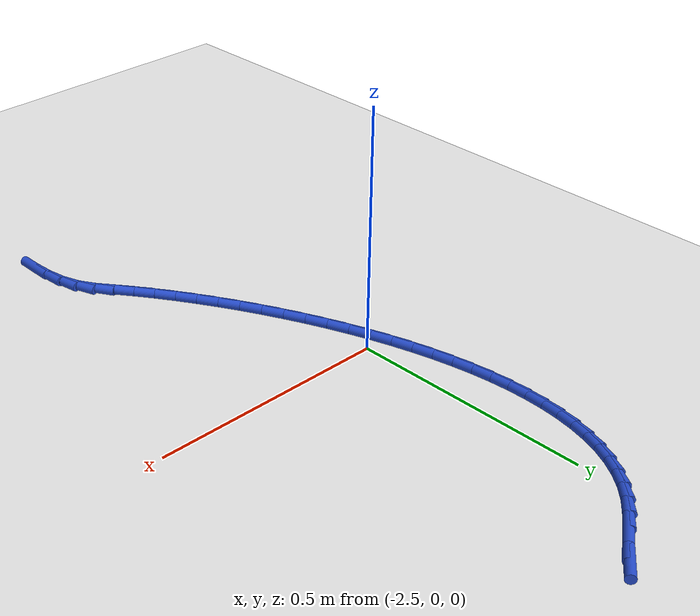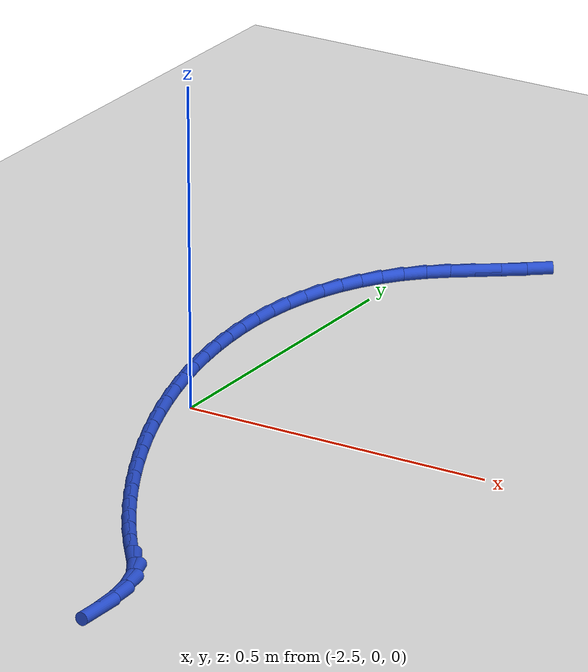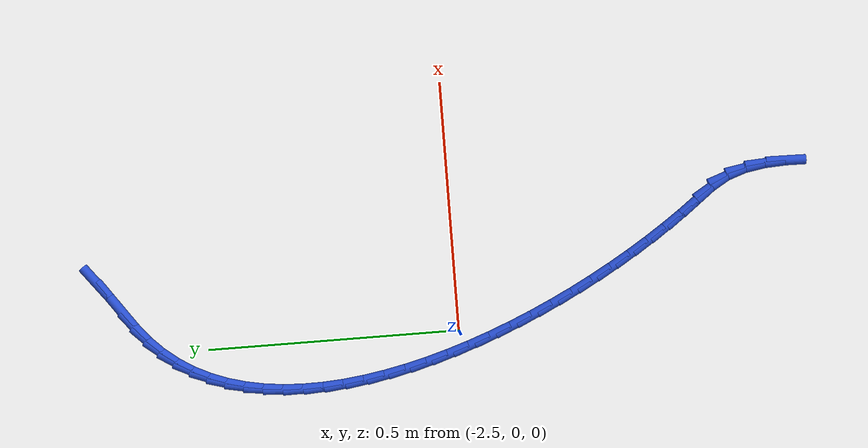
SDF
<sdf version="1.6">
 <world name="default">
  <model name="ground_plane">
   <static>1</static>
   <link name="link">
    <collision name="collision">
     <geometry><plane><normal>0 0 1</normal><size>100 100</size></plane></geometry>
     <surface><friction><ode><mu>100</mu><mu2>50</mu2></ode></friction></surface>
    </collision>
    <visual name="visual">
     <cast_shadows>0</cast_shadows>
     <geometry><plane><normal>0 0 1</normal><size>100 100</size></plane></geometry>
     <material>
      <script><uri>file://media/materials/scripts/gazebo.material</uri><name>Gazebo/WhiteGlow</name></script>
     </material>
    </visual>
   </link>
  </model>
  <model name="line">
   <link name="link_93">
    <pose>-2.3487339732690473 0.7132523125142439 0.01 0 1.57 0.6651072620050574</pose>
    <collision name="collision">
     <geometry><cylinder><radius>0.01</radius><length>0.08</length></cylinder></geometry>
    </collision>
    <visual name="visual">
     <material>
      <script><name>Gazebo/Blue</name><uri>file://media/materials/scripts/gazebo.material</uri></script>
     </material>
     <geometry><cylinder><radius>0.01</radius><length>0.08</length></cylinder></geometry>
    </visual>
   </link>
   <link name="link_94">
    <pose>-2.380268821391636 0.688518865251812 0.01 0 1.57 0.6261668625341004</pose>
    <collision name="collision">
     <geometry><cylinder><radius>0.01</radius><length>0.08</length></cylinder></geometry>
    </collision>
    <visual name="visual">
     <material>
      <script><name>Gazebo/Blue</name><uri>file://media/materials/scripts/gazebo.material</uri></script>
     </material>
     <geometry><cylinder><radius>0.01</radius><length>0.08</length></cylinder></geometry>
    </visual>
   </link>
   <link name="link_95">
    <pose>-2.4122917938123356 0.6653579238884731 0.01 0 1.57 0.626095446296929</pose>
    <collision name="collision">
     <geometry><cylinder><radius>0.01</radius><length>0.08</length></cylinder></geometry>
    </collision>
    <visual name="visual">
     <material>
      <script><name>Gazebo/Blue</name><uri>file://media/materials/scripts/gazebo.material</uri></script>
     </material>
     <geometry><cylinder><radius>0.01</radius><length>0.08</length></cylinder></geometry>
    </visual>
   </link>
   <link name="link_96">
    <pose>-2.4435886014168857 0.6427255927508299 0.01 0 1.57 0.6918697168758401</pose>
    <collision name="collision">
     <geometry><cylinder><radius>0.01</radius><length>0.08</length></cylinder></geometry>
    </collision>
    <visual name="visual">
     <material>
      <script><name>Gazebo/Blue</name><uri>file://media/materials/scripts/gazebo.material</uri></script>
     </material>
     <geometry><cylinder><radius>0.01</radius><length>0.08</length></cylinder></geometry>
    </visual>
   </link>
   <link name="link_97">
    <pose>-2.4724352960401896 0.6188265592326165 0.01 0 1.57 0.7988593255718446</pose>
    <collision name="collision">
     <geometry><cylinder><radius>0.01</radius><length>0.08</length></cylinder></geometry>
    </collision>
    <visual name="visual">
     <material>
      <script><name>Gazebo/Blue</name><uri>file://media/materials/scripts/gazebo.material</uri></script>
     </material>
     <geometry><cylinder><radius>0.01</radius><length>0.08</length></cylinder></geometry>
    </visual>
   </link>
   <link name="link_98">
    <pose>-2.4978841605324256 0.5926831609735262 0.01 0 1.57 0.9079831469648736</pose>
    <collision name="collision">
     <geometry><cylinder><radius>0.01</radius><length>0.08</length></cylinder></geometry>
    </collision>
    <visual name="visual">
     <material>
      <script><name>Gazebo/Blue</name><uri>file://media/materials/scripts/gazebo.material</uri></script>
     </material>
     <geometry><cylinder><radius>0.01</radius><length>0.08</length></cylinder></geometry>
    </visual>
   </link>
   <link name="link_99">
    <pose>-2.519985997748386 0.5643700666400359 0.01 0 1.57 1.01434771990306</pose>
    <collision name="collision">
     <geometry><cylinder><radius>0.01</radius><length>0.08</length></cylinder></geometry>
    </collision>
    <visual name="visual">
     <material>
      <script><name>Gazebo/Blue</name><uri>file://media/materials/scripts/gazebo.material</uri></script>
     </material>
     <geometry><cylinder><radius>0.01</radius><length>0.08</length></cylinder></geometry>
    </visual>
   </link>
   <link name="link_100">
    <pose>-2.5388572327230827 0.534031103509343 0.01 0 1.57 1.1159626708045105</pose>
    <collision name="collision">
     <geometry><cylinder><radius>0.01</radius><length>0.08</length></cylinder></geometry>
    </collision>
    <visual name="visual">
     <material>
      <script><name>Gazebo/Blue</name><uri>file://media/materials/scripts/gazebo.material</uri></script>
     </material>
     <geometry><cylinder><radius>0.01</radius><length>0.08</length></cylinder></geometry>
    </visual>
   </link>
   <link name="link_101">
    <pose>-2.554614290491531 0.5018100988586436 0.01 0 1.57 1.211390757309062</pose>
    <collision name="collision">
     <geometry><cylinder><radius>0.01</radius><length>0.08</length></cylinder></geometry>
    </collision>
    <visual name="visual">
     <material>
      <script><name>Gazebo/Blue</name><uri>file://media/materials/scripts/gazebo.material</uri></script>
     </material>
     <geometry><cylinder><radius>0.01</radius><length>0.08</length></cylinder></geometry>
    </visual>
   </link>
   <link name="link_102">
    <pose>-2.567373596088745 0.4678508799651356 0.01 0 1.57 1.299797858621396</pose>
    <collision name="collision">
     <geometry><cylinder><radius>0.01</radius><length>0.08</length></cylinder></geometry>
    </collision>
    <visual name="visual">
     <material>
      <script><name>Gazebo/Blue</name><uri>file://media/materials/scripts/gazebo.material</uri></script>
     </material>
     <geometry><cylinder><radius>0.01</radius><length>0.08</length></cylinder></geometry>
    </visual>
   </link>
   <link name="link_103">
    <pose>-2.5772515745497393 0.43229727410601476 0.01 0 1.57 1.380889069762448</pose>
    <collision name="collision">
     <geometry><cylinder><radius>0.01</radius><length>0.08</length></cylinder></geometry>
    </collision>
    <visual name="visual">
     <material>
      <script><name>Gazebo/Blue</name><uri>file://media/materials/scripts/gazebo.material</uri></script>
     </material>
     <geometry><cylinder><radius>0.01</radius><length>0.08</length></cylinder></geometry>
    </visual>
   </link>
   <link name="link_104">
    <pose>-2.5843646509095284 0.39529310855847916 0.01 0 1.57 1.454783601288777</pose>
    <collision name="collision">
     <geometry><cylinder><radius>0.01</radius><length>0.08</length></cylinder></geometry>
    </collision>
    <visual name="visual">
     <material>
      <script><name>Gazebo/Blue</name><uri>file://media/materials/scripts/gazebo.material</uri></script>
     </material>
     <geometry><cylinder><radius>0.01</radius><length>0.08</length></cylinder></geometry>
    </visual>
   </link>
   <link name="link_105">
    <pose>-2.5888292502031263 0.3569822105997247 0.01 0 1.57 1.5218776690014435</pose>
    <collision name="collision">
     <geometry><cylinder><radius>0.01</radius><length>0.08</length></cylinder></geometry>
    </collision>
    <visual name="visual">
     <material>
      <script><name>Gazebo/Blue</name><uri>file://media/materials/scripts/gazebo.material</uri></script>
     </material>
     <geometry><cylinder><radius>0.01</radius><length>0.08</length></cylinder></geometry>
    </visual>
   </link>
   <link name="link_106">
    <pose>-2.5907617974655475 0.3175084075069492 0.01 0 1.57 -1.5588669010215386</pose>
    <collision name="collision">
     <geometry><cylinder><radius>0.01</radius><length>0.08</length></cylinder></geometry>
    </collision>
    <visual name="visual">
     <material>
      <script><name>Gazebo/Blue</name><uri>file://media/materials/scripts/gazebo.material</uri></script>
     </material>
     <geometry><cylinder><radius>0.01</radius><length>0.08</length></cylinder></geometry>
    </visual>
   </link>
   <link name="link_107">
    <pose>-2.590278717731807 0.277015526557349 0.01 0 1.57 -1.5036408192791868</pose>
    <collision name="collision">
     <geometry><cylinder><radius>0.01</radius><length>0.08</length></cylinder></geometry>
    </collision>
    <visual name="visual">
     <material>
      <script><name>Gazebo/Blue</name><uri>file://media/materials/scripts/gazebo.material</uri></script>
     </material>
     <geometry><cylinder><radius>0.01</radius><length>0.08</length></cylinder></geometry>
    </visual>
   </link>
   <link name="link_108">
    <pose>-2.5874964360369184 0.2356473950281208 0.01 0 1.57 -1.4534024658288383</pose>
    <collision name="collision">
     <geometry><cylinder><radius>0.01</radius><length>0.08</length></cylinder></geometry>
    </collision>
    <visual name="visual">
     <material>
      <script><name>Gazebo/Blue</name><uri>file://media/materials/scripts/gazebo.material</uri></script>
     </material>
     <geometry><cylinder><radius>0.01</radius><length>0.08</length></cylinder></geometry>
    </visual>
   </link>
   <link name="link_109">
    <pose>-2.5825313774158962 0.1935478401964622 0.01 0 1.57 -1.4075426864646816</pose>
    <collision name="collision">
     <geometry><cylinder><radius>0.01</radius><length>0.08</length></cylinder></geometry>
    </collision>
    <visual name="visual">
     <material>
      <script><name>Gazebo/Blue</name><uri>file://media/materials/scripts/gazebo.material</uri></script>
     </material>
     <geometry><cylinder><radius>0.01</radius><length>0.08</length></cylinder></geometry>
    </visual>
   </link>
   <link name="link_110">
    <pose>-2.5754999669037546 0.15086068933956914 0.01 0 1.57 -1.3654958418265575</pose>
    <collision name="collision">
     <geometry><cylinder><radius>0.01</radius><length>0.08</length></cylinder></geometry>
    </collision>
    <visual name="visual">
     <material>
      <script><name>Gazebo/Blue</name><uri>file://media/materials/scripts/gazebo.material</uri></script>
     </material>
     <geometry><cylinder><radius>0.01</radius><length>0.08</length></cylinder></geometry>
    </visual>
   </link>
   <link name="link_111">
    <pose>-2.566518629535508 0.10772976973463967 0.01 0 1.57 -1.3267470332590132</pose>
    <collision name="collision">
     <geometry><cylinder><radius>0.01</radius><length>0.08</length></cylinder></geometry>
    </collision>
    <visual name="visual">
     <material>
      <script><name>Gazebo/Blue</name><uri>file://media/materials/scripts/gazebo.material</uri></script>
     </material>
     <geometry><cylinder><radius>0.01</radius><length>0.08</length></cylinder></geometry>
    </visual>
   </link>
   <link name="link_112">
    <pose>-2.5557037903461723 0.06429890865886964 0.01 0 1.57 -1.2908325058214039</pose>
    <collision name="collision">
     <geometry><cylinder><radius>0.01</radius><length>0.08</length></cylinder></geometry>
    </collision>
    <visual name="visual">
     <material>
      <script><name>Gazebo/Blue</name><uri>file://media/materials/scripts/gazebo.material</uri></script>
     </material>
     <geometry><cylinder><radius>0.01</radius><length>0.08</length></cylinder></geometry>
    </visual>
   </link>
   <link name="link_113">
    <pose>-2.543171874370759 0.020711933389456844 0.01 0 1.57 -1.2573361783949555</pose>
    <collision name="collision">
     <geometry><cylinder><radius>0.01</radius><length>0.08</length></cylinder></geometry>
    </collision>
    <visual name="visual">
     <material>
      <script><name>Gazebo/Blue</name><uri>file://media/materials/scripts/gazebo.material</uri></script>
     </material>
     <geometry><cylinder><radius>0.01</radius><length>0.08</length></cylinder></geometry>
    </visual>
   </link>
   <link name="link_114">
    <pose>-2.5290393066442847 -0.02288732879640265 0.01 0 1.57 -1.2258841676747017</pose>
    <collision name="collision">
     <geometry><cylinder><radius>0.01</radius><length>0.08</length></cylinder></geometry>
    </collision>
    <visual name="visual">
     <material>
      <script><name>Gazebo/Blue</name><uri>file://media/materials/scripts/gazebo.material</uri></script>
     </material>
     <geometry><cylinder><radius>0.01</radius><length>0.08</length></cylinder></geometry>
    </visual>
   </link>
   <link name="link_115">
    <pose>-2.5134225122017635 -0.06635505062151098 0.01 0 1.57 -1.1961384090811626</pose>
    <collision name="collision">
     <geometry><cylinder><radius>0.01</radius><length>0.08</length></cylinder></geometry>
    </collision>
    <visual name="visual">
     <material>
      <script><name>Gazebo/Blue</name><uri>file://media/materials/scripts/gazebo.material</uri></script>
     </material>
     <geometry><cylinder><radius>0.01</radius><length>0.08</length></cylinder></geometry>
    </visual>
   </link>
   <link name="link_116">
    <pose>-2.4964379160782095 -0.10954740480867187 0.01 0 1.57 -1.1677899679786543</pose>
    <collision name="collision">
     <geometry><cylinder><radius>0.01</radius><length>0.08</length></cylinder></geometry>
    </collision>
    <visual name="visual">
     <material>
      <script><name>Gazebo/Blue</name><uri>file://media/materials/scripts/gazebo.material</uri></script>
     </material>
     <geometry><cylinder><radius>0.01</radius><length>0.08</length></cylinder></geometry>
    </visual>
   </link>
   <link name="link_117">
    <pose>-2.478201943308636 -0.1523205640806893 0.01 0 1.57 -1.1405523040305254</pose>
    <collision name="collision">
     <geometry><cylinder><radius>0.01</radius><length>0.08</length></cylinder></geometry>
    </collision>
    <visual name="visual">
     <material>
      <script><name>Gazebo/Blue</name><uri>file://media/materials/scripts/gazebo.material</uri></script>
     </material>
     <geometry><cylinder><radius>0.01</radius><length>0.08</length></cylinder></geometry>
    </visual>
   </link>
   <link name="link_118">
    <pose>-2.4588310189280587 -0.1945307011603643 0.01 0 1.57 -1.1141545368031591</pose>
    <collision name="collision">
     <geometry><cylinder><radius>0.01</radius><length>0.08</length></cylinder></geometry>
    </collision>
    <visual name="visual">
     <material>
      <script><name>Gazebo/Blue</name><uri>file://media/materials/scripts/gazebo.material</uri></script>
     </material>
     <geometry><cylinder><radius>0.01</radius><length>0.08</length></cylinder></geometry>
    </visual>
   </link>
   <link name="link_119">
    <pose>-2.4384415679714917 -0.23603398877050108 0.01 0 1.57 -1.0883346141190189</pose>
    <collision name="collision">
     <geometry><cylinder><radius>0.01</radius><length>0.08</length></cylinder></geometry>
    </collision>
    <visual name="visual">
     <material>
      <script><name>Gazebo/Blue</name><uri>file://media/materials/scripts/gazebo.material</uri></script>
     </material>
     <geometry><cylinder><radius>0.01</radius><length>0.08</length></cylinder></geometry>
    </visual>
   </link>
   <link name="link_120">
    <pose>-2.4171500154739496 -0.27668659963390274 0.01 0 1.57 -1.0628321711078366</pose>
    <collision name="collision">
     <geometry><cylinder><radius>0.01</radius><length>0.08</length></cylinder></geometry>
    </collision>
    <visual name="visual">
     <material>
      <script><name>Gazebo/Blue</name><uri>file://media/materials/scripts/gazebo.material</uri></script>
     </material>
     <geometry><cylinder><radius>0.01</radius><length>0.08</length></cylinder></geometry>
    </visual>
   </link>
   <link name="link_121">
    <pose>-2.395072786470446 -0.31634470647337226 0.01 0 1.57 -1.0373807605151562</pose>
    <collision name="collision">
     <geometry><cylinder><radius>0.01</radius><length>0.08</length></cylinder></geometry>
    </collision>
    <visual name="visual">
     <material>
      <script><name>Gazebo/Blue</name><uri>file://media/materials/scripts/gazebo.material</uri></script>
     </material>
     <geometry><cylinder><radius>0.01</radius><length>0.08</length></cylinder></geometry>
    </visual>
   </link>
   <link name="link_122">
    <pose>-2.372326305995996 -0.3548644820117139 0.01 0 1.57 -1.0116990101826289</pose>
    <collision name="collision">
     <geometry><cylinder><radius>0.01</radius><length>0.08</length></cylinder></geometry>
    </collision>
    <visual name="visual">
     <material>
      <script><name>Gazebo/Blue</name><uri>file://media/materials/scripts/gazebo.material</uri></script>
     </material>
     <geometry><cylinder><radius>0.01</radius><length>0.08</length></cylinder></geometry>
    </visual>
   </link>
   <link name="link_123">
    <pose>-2.3490269990856136 -0.39210209897172854 0.01 0 1.57 -0.9854800971866531</pose>
    <collision name="collision">
     <geometry><cylinder><radius>0.01</radius><length>0.08</length></cylinder></geometry>
    </collision>
    <visual name="visual">
     <material>
      <script><name>Gazebo/Blue</name><uri>file://media/materials/scripts/gazebo.material</uri></script>
     </material>
     <geometry><cylinder><radius>0.01</radius><length>0.08</length></cylinder></geometry>
    </visual>
   </link>
   <link name="link_124">
    <pose>-2.325291290774313 -0.4279137300762206 0.01 0 1.57 -0.9583786892292316</pose>
    <collision name="collision">
     <geometry><cylinder><radius>0.01</radius><length>0.08</length></cylinder></geometry>
    </collision>
    <visual name="visual">
     <material>
      <script><name>Gazebo/Blue</name><uri>file://media/materials/scripts/gazebo.material</uri></script>
     </material>
     <geometry><cylinder><radius>0.01</radius><length>0.08</length></cylinder></geometry>
    </visual>
   </link>
   <link name="link_125">
    <pose>-2.3012356060971095 -0.46215554804799286 0.01 0 1.57 -0.92999414941627</pose>
    <collision name="collision">
     <geometry><cylinder><radius>0.01</radius><length>0.08</length></cylinder></geometry>
    </collision>
    <visual name="visual">
     <material>
      <script><name>Gazebo/Blue</name><uri>file://media/materials/scripts/gazebo.material</uri></script>
     </material>
     <geometry><cylinder><radius>0.01</radius><length>0.08</length></cylinder></geometry>
    </visual>
   </link>
   <link name="link_126">
    <pose>-2.2769763700890158 -0.4946837256098494 0.01 0 1.57 -0.9149033920607016</pose>
    <collision name="collision">
     <geometry><cylinder><radius>0.01</radius><length>0.08</length></cylinder></geometry>
    </collision>
    <visual name="visual">
     <material>
      <script><name>Gazebo/Blue</name><uri>file://media/materials/scripts/gazebo.material</uri></script>
     </material>
     <geometry><cylinder><radius>0.01</radius><length>0.08</length></cylinder></geometry>
    </visual>
   </link>
   <link name="link_127">
    <pose>-2.2530726907782657 -0.5257458248539513 0.01 0 1.57 -1.0320628217066994</pose>
    <collision name="collision">
     <geometry><cylinder><radius>0.01</radius><length>0.08</length></cylinder></geometry>
    </collision>
    <visual name="visual">
     <material>
      <script><name>Gazebo/Blue</name><uri>file://media/materials/scripts/gazebo.material</uri></script>
     </material>
     <geometry><cylinder><radius>0.01</radius><length>0.08</length></cylinder></geometry>
    </visual>
   </link>
   <link name="link_128">
    <pose>-2.2334520735995174 -0.5585721756521519 0.01 0 1.57 -1.2408155083050885</pose>
    <collision name="collision">
     <geometry><cylinder><radius>0.01</radius><length>0.08</length></cylinder></geometry>
    </collision>
    <visual name="visual">
     <material>
      <script><name>Gazebo/Blue</name><uri>file://media/materials/scripts/gazebo.material</uri></script>
     </material>
     <geometry><cylinder><radius>0.01</radius><length>0.08</length></cylinder></geometry>
    </visual>
   </link>
   <link name="link_129">
    <pose>-2.2208052112476895 -0.5954969508011546 0.01 0 1.57 -1.4032726969940112</pose>
    <collision name="collision">
     <geometry><cylinder><radius>0.01</radius><length>0.08</length></cylinder></geometry>
    </collision>
    <visual name="visual">
     <material>
      <script><name>Gazebo/Blue</name><uri>file://media/materials/scripts/gazebo.material</uri></script>
     </material>
     <geometry><cylinder><radius>0.01</radius><length>0.08</length></cylinder></geometry>
    </visual>
   </link>
   <link name="link_130">
    <pose>-2.2139997294295357 -0.6357402227773666 0.01 0 1.57 -1.5152390199152785</pose>
    <collision name="collision">
     <geometry><cylinder><radius>0.01</radius><length>0.08</length></cylinder></geometry>
    </collision>
    <visual name="visual">
     <material>
      <script><name>Gazebo/Blue</name><uri>file://media/materials/scripts/gazebo.material</uri></script>
     </material>
     <geometry><cylinder><radius>0.01</radius><length>0.08</length></cylinder></geometry>
    </visual>
   </link>
   <link name="link_131">
    <pose>-2.2116326961168413 -0.6783016349699821 0.01 0 1.57 1.555562878627641</pose>
    <collision name="collision">
     <geometry><cylinder><radius>0.01</radius><length>0.08</length></cylinder></geometry>
    </collision>
    <visual name="visual">
     <material>
      <script><name>Gazebo/Blue</name><uri>file://media/materials/scripts/gazebo.material</uri></script>
     </material>
     <geometry><cylinder><radius>0.01</radius><length>0.08</length></cylinder></geometry>
    </visual>
   </link>
  </model>
 </world>
</sdf>
